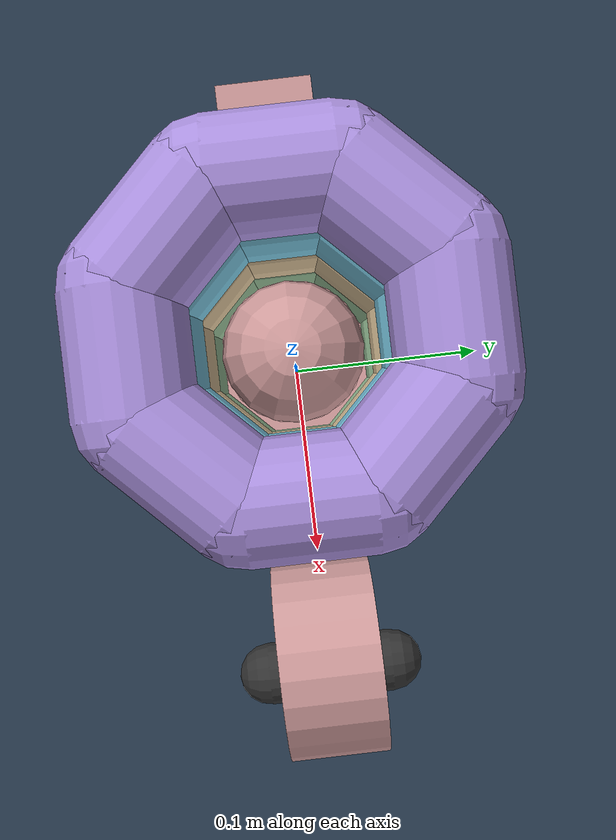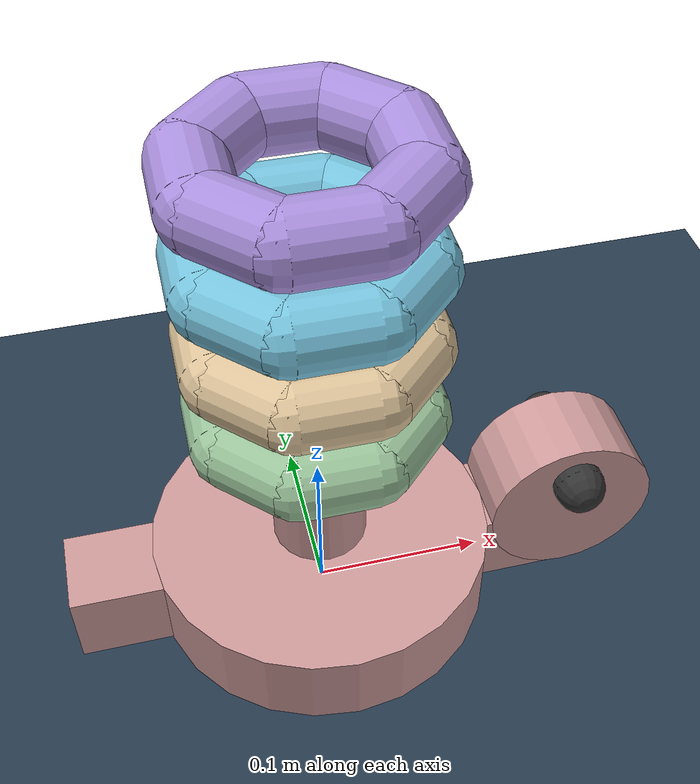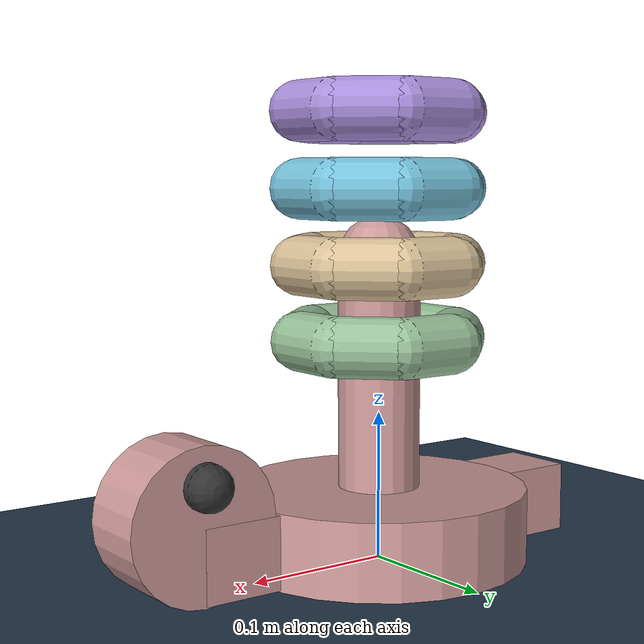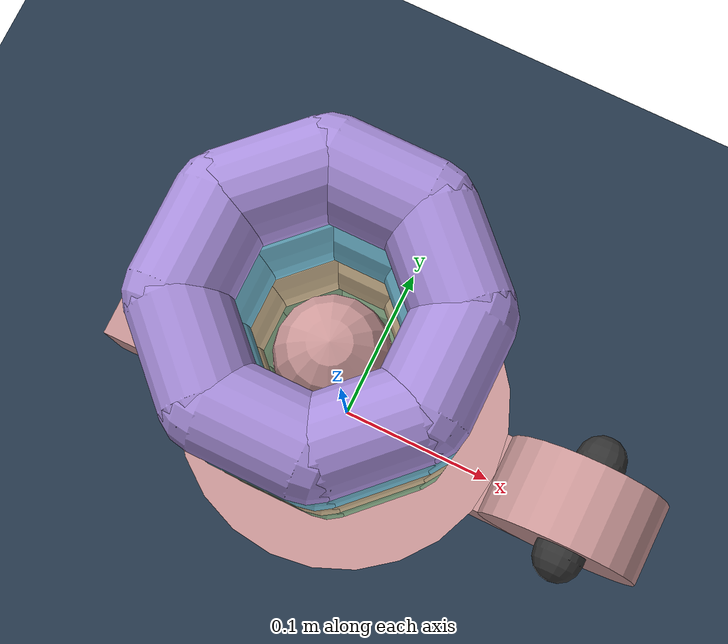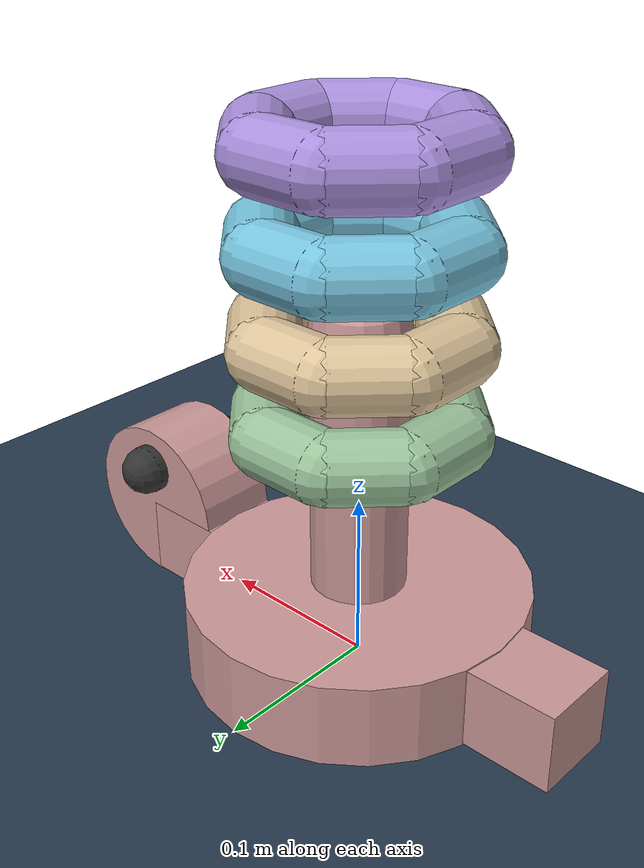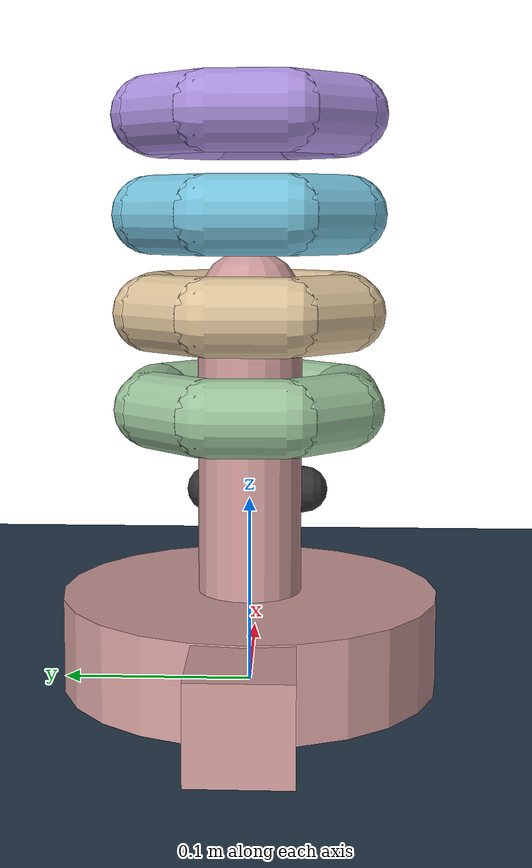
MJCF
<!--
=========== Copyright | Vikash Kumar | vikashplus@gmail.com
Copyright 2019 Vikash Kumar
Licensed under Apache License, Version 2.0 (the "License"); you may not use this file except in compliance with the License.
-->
<mujoco model='turtletoy-v200'>

	<include file='../utils/basic_scene.xml'/>
	<compiler angle="radian"/>
	<size nconmax='200' njmax='600'/>

	<default>
		<default class="turtleBase">
			<geom rgba='.8 .6 .6 1' condim='3'/>
		</default>
		<default class="donut0">
			<geom type="capsule" size='.02 .02' rgba='.6 .76 .6 1' condim='3'/>
		</default>
		<default class="donut1">
			<geom type="capsule" size='.02 .02' rgba='.86 .76 .6 1' condim='3'/>
		</default>
		<default class="donut2">
			<geom type="capsule" size='.02 .02' rgba='.46 .76 .86 1' condim='3'/>
		</default>
		<default class="donut3">
			<geom type="capsule" size='.02 .02' rgba='.66 .56 .86 1' condim='3'/>
		</default>
	</default>

	<!-- ======= WORLD ======= -->
    <worldbody>

		<body name='turtle base' childclass="turtleBase" pos='0 0 .025'>
			<geom type='cylinder' rgba='.8 .6 .6 1' pos='0 0 0' size='.100 .025'/>
			<geom name='tail' type='box' rgba='.8 .6 .6 1' pos='0 0 0' size='.150 .025 .024'/>
			<geom type='capsule' rgba='.8 .6 .6 1' size='.0275 .080' pos='0 0 .1'/>
			<geom name='eyes' type='capsule' rgba='.2 .2 .2 1' size='.015 .03' pos='0.15 0 .05' euler='1.57 0 0'/>
			<geom type='cylinder' size='.05 0.025' pos='.15 0 .025' euler='1.57 0 0'/>
			<joint type='free' limited="false"/>
		</body>

		<body childclass="donut0" name='donut0' pos='0 0 .15' euler='1.57 0 0'>
			<geom pos='0.05 0 0' 		euler='0 0 0'/>
			<geom pos='-.035  0 0.035' 	euler='0 0.785 0'/>
			<geom pos='0 0 0.05' 		euler='0 1.570 0'/>
			<geom pos='0.035 0 0.035' 	euler='0 2.355 0'/>
			<geom pos='-0.05 0 0'  		euler='0 3.140 0'/>
			<geom pos='0.035  0 -.035'  euler='0 0.785 0'/>
			<geom pos='0 0 -.05'  		euler='0 1.570 0'/>
			<geom pos='-.035 0 -.035'  	euler='0 2.355 0'/>
			<joint type='free' limited="false"/>
		</body>

		<body childclass="donut1" name='donut1' pos='0 0 .2' euler='1.57 0 0'>
			<geom pos='0.05 0 0' 		euler='0 0 0'/>
			<geom pos='-.035  0 0.035' 	euler='0 0.785 0'/>
			<geom pos='0 0 0.05' 		euler='0 1.570 0'/>
			<geom pos='0.035 0 0.035' 	euler='0 2.355 0'/>
			<geom pos='-0.05 0 0'  		euler='0 3.140 0'/>
			<geom pos='0.035  0 -.035'  euler='0 0.785 0'/>
			<geom pos='0 0 -.05'  		euler='0 1.570 0'/>
			<geom pos='-.035 0 -.035'  	euler='0 2.355 0'/>
			<joint type='free' limited="false"/>
		</body>

		<body childclass="donut2" name='donut2' pos='0 0 .25' euler='1.57 0 0'>
			<geom pos='0.05 0 0' 		euler='0 0 0'/>
			<geom pos='-.035  0 0.035' 	euler='0 0.785 0'/>
			<geom pos='0 0 0.05' 		euler='0 1.570 0'/>
			<geom pos='0.035 0 0.035' 	euler='0 2.355 0'/>
			<geom pos='-0.05 0 0'  		euler='0 3.140 0'/>
			<geom pos='0.035  0 -.035'  euler='0 0.785 0'/>
			<geom pos='0 0 -.05'  		euler='0 1.570 0'/>
			<geom pos='-.035 0 -.035'  	euler='0 2.355 0'/>
			<joint type='free' limited="false"/>
		</body>

		<body childclass="donut3" name='donut3' pos='0 0 .30' euler='1.57 0 0'>
			<geom pos='0.05 0 0' 		euler='0 0 0'/>
			<geom pos='-.035  0 0.035' 	euler='0 0.785 0'/>
			<geom pos='0 0 0.05' 		euler='0 1.570 0'/>
			<geom pos='0.035 0 0.035' 	euler='0 2.355 0'/>
			<geom pos='-0.05 0 0'  		euler='0 3.140 0'/>
			<geom pos='0.035  0 -.035'  euler='0 0.785 0'/>
			<geom pos='0 0 -.05'  		euler='0 1.570 0'/>
			<geom pos='-.035 0 -.035'  	euler='0 2.355 0'/>
			<joint type='free' limited="false"/>
		</body>

    </worldbody>

</mujoco>

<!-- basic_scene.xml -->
<mujocoinclude>

    <visual>
        <quality shadowsize="4048"/>
    </visual>

    <asset>
        <texture name="skybox" type="skybox" builtin="gradient" rgb1=".08 .09 .10" rgb2="0 0 0"
               width="800" height="800" mark="random" markrgb=".8 .8 .8"/>
        <texture name="texplane" type="2d" builtin="checker" rgb1=".2 .3 .4" rgb2=".1 0.15 0.2" width="512" height="512" markrgb='.1 .1 .1' mark='random' random='.05'/>
        <material name='MatPlane' reflectance='0.05' texture="texplane" texrepeat="1 1" texuniform="true"/>
    </asset>

    <worldbody>
        <light directional='true' diffuse='.8 .8 .8' specular='0.3 0.3 0.3' pos='-1 -1 1' dir='1 1 -1'/>
		<geom name='floor' pos='0 0 0' size='2 2 .1' conaffinity='1' contype='1' type='plane' material="MatPlane" condim='3'/>
    </worldbody>
</mujocoinclude>
